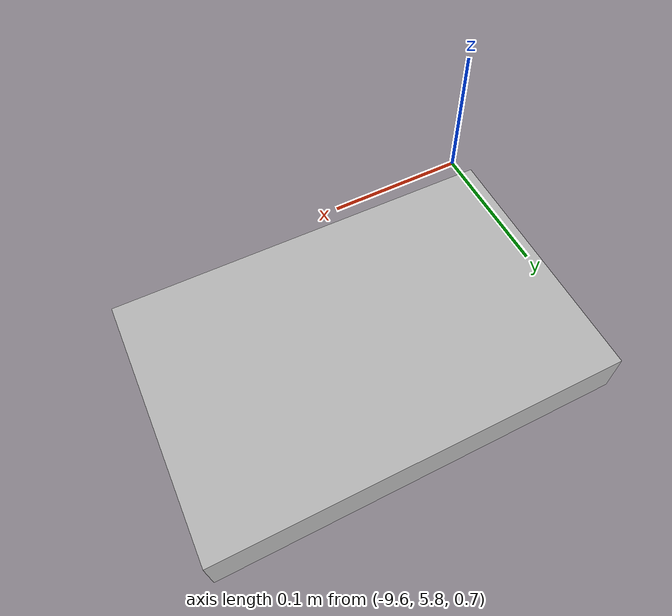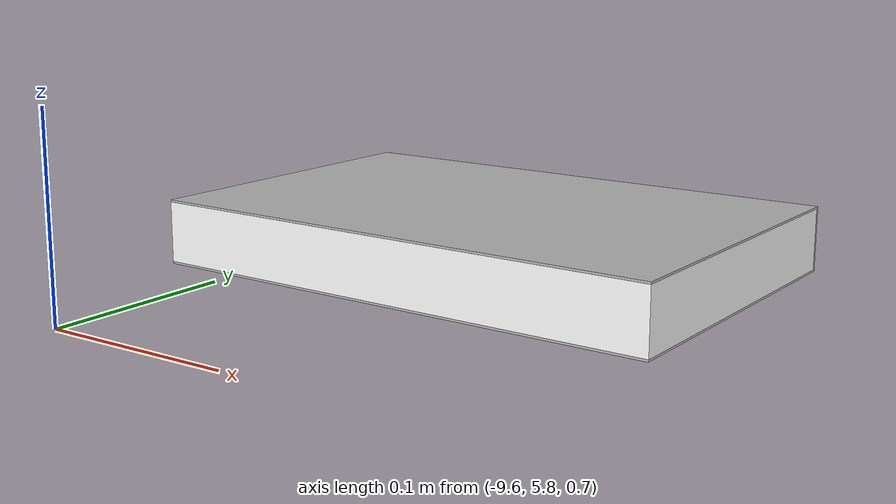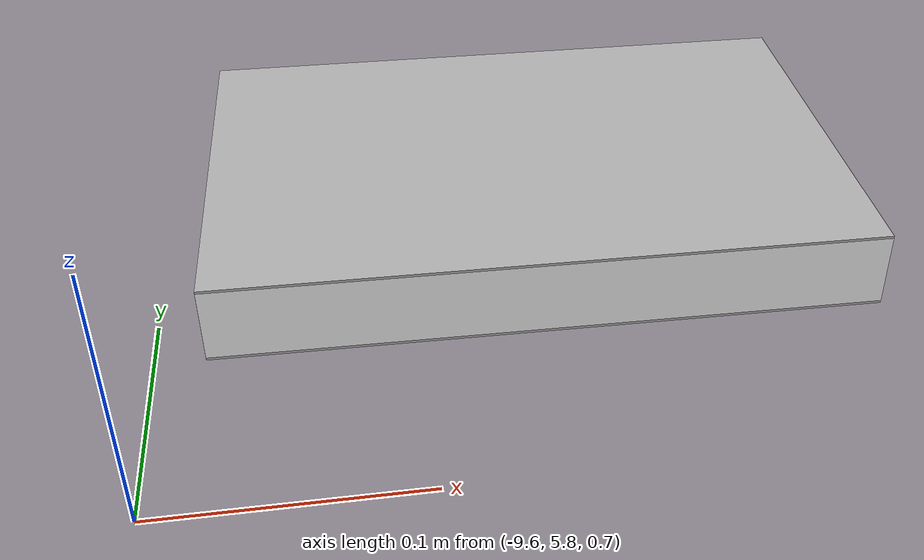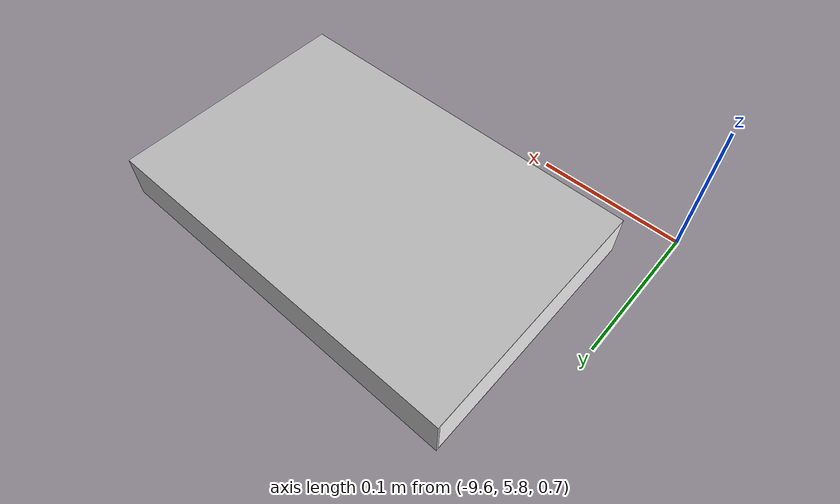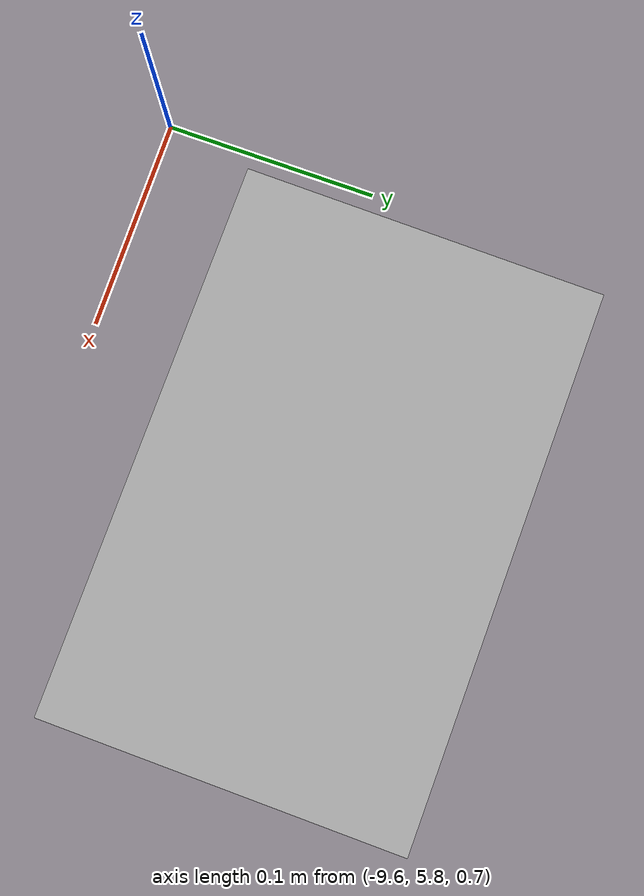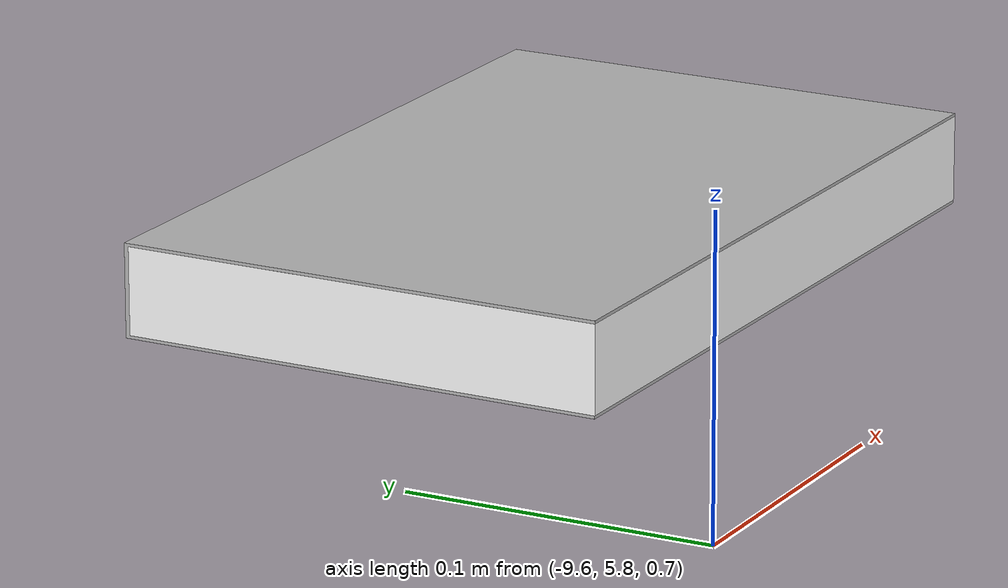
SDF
<sdf version="1.7">
 <world name="default">
  <model name="ground_plane">
   <static>1</static>
   <link name="link">
    <collision name="collision">
     <geometry><plane><normal>0 0 1</normal><size>100 100</size></plane></geometry>
     <surface><friction><ode><mu>1</mu><mu2>1</mu2></ode></friction></surface>
    </collision>
    <visual name="visual">
     <cast_shadows>0</cast_shadows>
     <geometry><plane><normal>0 0 1</normal><size>100 100</size></plane></geometry>
     <material>
      <script><uri>file://media/materials/scripts/gazebo.material</uri><name>Gazebo/Grey</name></script>
     </material>
    </visual>
    <velocity_decay><linear>0</linear><angular>0</angular></velocity_decay>
   </link>
  </model>
  <model name="book_10_0">
   <link name="cover">
    <pose>0 -0.000108 0.015405 0 -0 0</pose>
    <visual name="visual">
     <geometry><box><size>0.245 0.16 0.03</size></box></geometry>
     <material>
      <script>
       <uri>model://book_10/materials/scripts</uri>
       <uri>model://book_10/materials/textures</uri>
       <name>book_10</name>
      </script>
     </material>
    </visual>
    <collision name="collision"><geometry><box><size>0.245 0.16 0.03</size></box></geometry></collision>
   </link>
   <link name="page">
    <pose>0 0.000608 0.015405 0 -0 0</pose>
    <visual name="visual">
     <geometry><box><size>0.24502 0.15862 0.028</size></box></geometry>
     <material>
      <lighting>1</lighting>
      <ambient>1 1 1 1</ambient>
      <diffuse>1 1 1 1</diffuse>
      <specular>0.01 0.01 0.01 1</specular>
      <emissive>0 0 0 1</emissive>
      <shader type="vertex"><normal_map>__default__</normal_map></shader>
     </material>
    </visual>
    <collision name="collision"><geometry><box><size>0.245 0.16 0.03</size></box></geometry></collision>
   </link>
   <static>1</static>
   <pose>-9.45293 5.92846 0.722801 0 -0 3.12799</pose>
  </model>
 </world>
</sdf>
